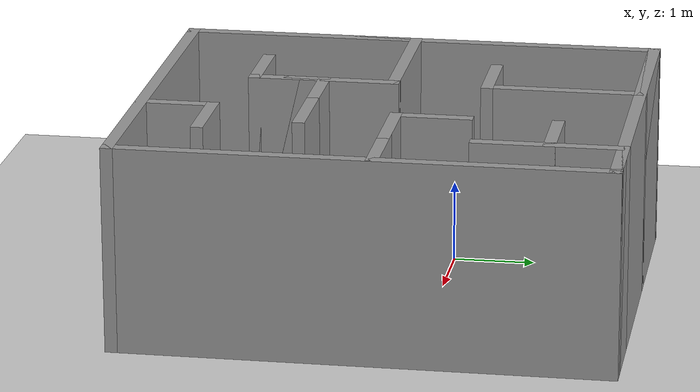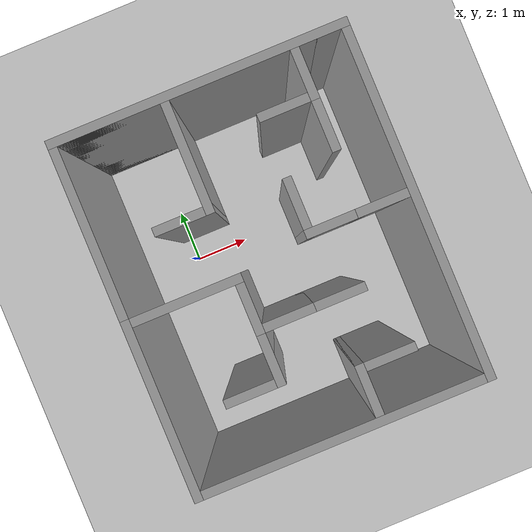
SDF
<sdf version="1.6">
 <world name="default">
  <light name="sun" type="directional">
   <pose>0 0 10 0 -0 0</pose>
   <diffuse>0.8 0.8 0.8 1</diffuse>
   <specular>0.2 0.2 0.2 1</specular>
   <attenuation>
    <range>1000</range>
    <constant>0.9</constant>
    <linear>0.01</linear>
    <quadratic>0.001</quadratic>
   </attenuation>
   <direction>-0.5 0.1 -0.9</direction>
  </light>
  <model name="ground_plane">
   <static>1</static>
   <link name="link">
    <collision name="collision">
     <geometry><plane><normal>0 0 1</normal><size>100 100</size></plane></geometry>
     <surface><friction><ode><mu>100</mu><mu2>50</mu2></ode></friction></surface>
    </collision>
    <visual name="visual">
     <cast_shadows>0</cast_shadows>
     <geometry><plane><normal>0 0 1</normal><size>100 100</size></plane></geometry>
     <material>
      <script><uri>file://media/materials/scripts/gazebo.material</uri><name>Gazebo/Grey</name></script>
     </material>
    </visual>
   </link>
  </model>
  <gravity>0 0 -9.8</gravity>
  <magnetic_field>6e-06 2.3e-05 -4.2e-05</magnetic_field>
  <atmosphere type="adiabatic"/>
  <physics name="default_physics" default="0" type="ode">
   <max_step_size>0.001</max_step_size>
   <real_time_factor>1</real_time_factor>
   <real_time_update_rate>1000</real_time_update_rate>
  </physics>
  <scene><ambient>0.4 0.4 0.4 1</ambient><background>0.7 0.7 0.7 1</background><shadows>1</shadows></scene>
  <spherical_coordinates>
   <surface_model>EARTH_WGS84</surface_model>
   <latitude_deg>0</latitude_deg>
   <longitude_deg>0</longitude_deg>
   <elevation>0</elevation>
   <heading_deg>0</heading_deg>
  </spherical_coordinates>
  <model name="building4_0">
   <pose>1.32774 -0.578973 0 0 -0 0</pose>
   <link name="Wall_0">
    <collision name="Wall_0_Collision">
     <geometry><box><size>5 0.15 2.5</size></box></geometry>
     <pose>0 0 1.25 0 -0 0</pose>
    </collision>
    <visual name="Wall_0_Visual">
     <pose>0 0 1.25 0 -0 0</pose>
     <geometry><box><size>5 0.15 2.5</size></box></geometry>
     <material>
      <script><uri>file://media/materials/scripts/gazebo.material</uri><name>Gazebo/Grey</name></script>
      <ambient>1 1 1 1</ambient>
     </material>
     <meta><layer>0</layer></meta>
    </visual>
    <pose>0 2.925 0 0 -0 0</pose>
   </link>
   <link name="Wall_1">
    <collision name="Wall_1_Collision">
     <geometry><box><size>6 0.15 2.5</size></box></geometry>
     <pose>0 0 1.25 0 -0 0</pose>
    </collision>
    <visual name="Wall_1_Visual">
     <pose>0 0 1.25 0 -0 0</pose>
     <geometry><box><size>6 0.15 2.5</size></box></geometry>
     <material>
      <script><uri>file://media/materials/scripts/gazebo.material</uri><name>Gazebo/Grey</name></script>
      <ambient>1 1 1 1</ambient>
     </material>
     <meta><layer>0</layer></meta>
    </visual>
    <pose>2.425 0 0 0 0 -1.5708</pose>
   </link>
   <link name="Wall_11">
    <collision name="Wall_11_Collision">
     <geometry><box><size>3 0.15 2.5</size></box></geometry>
     <pose>0 0 1.25 0 -0 0</pose>
    </collision>
    <visual name="Wall_11_Visual">
     <pose>0 0 1.25 0 -0 0</pose>
     <geometry><box><size>3 0.15 2.5</size></box></geometry>
     <material>
      <script><uri>file://media/materials/scripts/gazebo.material</uri><name>Gazebo/Grey</name></script>
      <ambient>1 1 1 1</ambient>
     </material>
     <meta><layer>0</layer></meta>
    </visual>
    <pose>-2.425 -1.5 0 0 -0 1.5708</pose>
   </link>
   <link name="Wall_12">
    <collision name="Wall_12_Collision">
     <geometry><box><size>2 0.15 2.5</size></box></geometry>
     <pose>0 0 1.25 0 -0 0</pose>
    </collision>
    <visual name="Wall_12_Visual">
     <pose>0 0 1.25 0 -0 0</pose>
     <geometry><box><size>2 0.15 2.5</size></box></geometry>
     <material>
      <script><uri>file://media/materials/scripts/gazebo.material</uri><name>Gazebo/Grey</name></script>
      <ambient>1 1 1 1</ambient>
     </material>
     <meta><layer>0</layer></meta>
    </visual>
    <pose>-1.5 -0.075 0 0 -0 0</pose>
   </link>
   <link name="Wall_14">
    <collision name="Wall_14_Collision">
     <geometry><box><size>1 0.15 2.5</size></box></geometry>
     <pose>0 0 1.25 0 -0 0</pose>
    </collision>
    <visual name="Wall_14_Visual">
     <pose>0 0 1.25 0 -0 0</pose>
     <geometry><box><size>1 0.15 2.5</size></box></geometry>
     <material>
      <script><uri>file://media/materials/scripts/gazebo.material</uri><name>Gazebo/Grey</name></script>
      <ambient>1 1 1 1</ambient>
     </material>
     <meta><layer>0</layer></meta>
    </visual>
    <pose>-0.575 -0.5 0 0 0 -1.5708</pose>
   </link>
   <link name="Wall_15">
    <collision name="Wall_15_Collision">
     <geometry><box><size>1 0.15 2.5</size></box></geometry>
     <pose>0 0 1.25 0 -0 0</pose>
    </collision>
    <visual name="Wall_15_Visual">
     <pose>0 0 1.25 0 -0 0</pose>
     <geometry><box><size>1 0.15 2.5</size></box></geometry>
     <material>
      <script><uri>file://media/materials/scripts/gazebo.material</uri><name>Gazebo/Grey</name></script>
      <ambient>1 1 1 1</ambient>
     </material>
     <meta><layer>0</layer></meta>
    </visual>
    <pose>-0.575 -1.35 0 0 0 -1.5708</pose>
   </link>
   <link name="Wall_16">
    <collision name="Wall_16_Collision">
     <geometry><box><size>1 0.15 2.5</size></box></geometry>
     <pose>0 0 1.25 0 -0 0</pose>
    </collision>
    <visual name="Wall_16_Visual">
     <pose>0 0 1.25 0 -0 0</pose>
     <geometry><box><size>1 0.15 2.5</size></box></geometry>
     <material>
      <script><uri>file://media/materials/scripts/gazebo.material</uri><name>Gazebo/Grey</name></script>
      <ambient>1 1 1 1</ambient>
     </material>
     <meta><layer>0</layer></meta>
    </visual>
    <pose>-1 -1.775 0 0 -0 3.14159</pose>
   </link>
   <link name="Wall_19">
    <collision name="Wall_19_Collision">
     <geometry><box><size>1 0.15 2.5</size></box></geometry>
     <pose>0 0 1.25 0 -0 0</pose>
    </collision>
    <visual name="Wall_19_Visual">
     <pose>0 0 1.25 0 -0 0</pose>
     <geometry><box><size>1 0.15 2.5</size></box></geometry>
     <material>
      <script><uri>file://media/materials/scripts/gazebo.material</uri><name>Gazebo/Grey</name></script>
      <ambient>1 1 1 1</ambient>
     </material>
     <meta><layer>0</layer></meta>
    </visual>
    <pose>-0.575 -1.35 0 0 -0 1.5708</pose>
   </link>
   <link name="Wall_2">
    <collision name="Wall_2_Collision">
     <geometry><box><size>5 0.15 2.5</size></box></geometry>
     <pose>0 0 1.25 0 -0 0</pose>
    </collision>
    <visual name="Wall_2_Visual">
     <pose>0 0 1.25 0 -0 0</pose>
     <geometry><box><size>5 0.15 2.5</size></box></geometry>
     <material>
      <script><uri>file://media/materials/scripts/gazebo.material</uri><name>Gazebo/Grey</name></script>
      <ambient>1 1 1 1</ambient>
     </material>
     <meta><layer>0</layer></meta>
    </visual>
    <pose>0 -2.925 0 0 -0 3.14159</pose>
   </link>
   <link name="Wall_20">
    <collision name="Wall_20_Collision">
     <geometry><box><size>1 0.15 2.5</size></box></geometry>
     <pose>0 0 1.25 0 -0 0</pose>
    </collision>
    <visual name="Wall_20_Visual">
     <pose>0 0 1.25 0 -0 0</pose>
     <geometry><box><size>1 0.15 2.5</size></box></geometry>
     <material>
      <script><uri>file://media/materials/scripts/gazebo.material</uri><name>Gazebo/Grey</name></script>
      <ambient>1 1 1 1</ambient>
     </material>
     <meta><layer>0</layer></meta>
    </visual>
    <pose>-0.15 -0.925 0 0 -0 0</pose>
   </link>
   <link name="Wall_21">
    <collision name="Wall_21_Collision">
     <geometry><box><size>1 0.15 2.5</size></box></geometry>
     <pose>0 0 1.25 0 -0 0</pose>
    </collision>
    <visual name="Wall_21_Visual">
     <pose>0 0 1.25 0 -0 0</pose>
     <geometry><box><size>1 0.15 2.5</size></box></geometry>
     <material>
      <script><uri>file://media/materials/scripts/gazebo.material</uri><name>Gazebo/Grey</name></script>
      <ambient>1 1 1 1</ambient>
     </material>
     <meta><layer>0</layer></meta>
    </visual>
    <pose>0.7 -0.925 0 0 -0 0</pose>
   </link>
   <link name="Wall_25">
    <collision name="Wall_25_Collision">
     <geometry><box><size>1 0.15 2.5</size></box></geometry>
     <pose>0 0 1.25 0 -0 0</pose>
    </collision>
    <visual name="Wall_25_Visual">
     <pose>0 0 1.25 0 -0 0</pose>
     <geometry><box><size>1 0.15 2.5</size></box></geometry>
     <material>
      <script><uri>file://media/materials/scripts/gazebo.material</uri><name>Gazebo/Grey</name></script>
      <ambient>1 1 1 1</ambient>
     </material>
     <meta><layer>0</layer></meta>
    </visual>
    <pose>2 2.925 0 0 -0 3.14159</pose>
   </link>
   <link name="Wall_26">
    <collision name="Wall_26_Collision">
     <geometry><box><size>1 0.15 2.5</size></box></geometry>
     <pose>0 0 1.25 0 -0 0</pose>
    </collision>
    <visual name="Wall_26_Visual">
     <pose>0 0 1.25 0 -0 0</pose>
     <geometry><box><size>1 0.15 2.5</size></box></geometry>
     <material>
      <script><uri>file://media/materials/scripts/gazebo.material</uri><name>Gazebo/Grey</name></script>
      <ambient>1 1 1 1</ambient>
     </material>
     <meta><layer>0</layer></meta>
    </visual>
    <pose>1.575 2.5 0 0 0 -1.5708</pose>
   </link>
   <link name="Wall_3">
    <collision name="Wall_3_Collision">
     <geometry><box><size>6 0.15 2.5</size></box></geometry>
     <pose>0 0 1.25 0 -0 0</pose>
    </collision>
    <visual name="Wall_3_Visual">
     <pose>0 0 1.25 0 -0 0</pose>
     <geometry><box><size>6 0.15 2.5</size></box></geometry>
     <material>
      <script><uri>file://media/materials/scripts/gazebo.material</uri><name>Gazebo/Grey</name></script>
      <ambient>1 1 1 1</ambient>
     </material>
     <meta><layer>0</layer></meta>
    </visual>
    <pose>-2.425 0 0 0 -0 1.5708</pose>
   </link>
   <link name="Wall_30">
    <collision name="Wall_30_Collision">
     <geometry><box><size>1 0.15 2.5</size></box></geometry>
     <pose>0 0 1.25 0 -0 0</pose>
    </collision>
    <visual name="Wall_30_Visual">
     <pose>0 0 1.25 0 -0 0</pose>
     <geometry><box><size>1 0.15 2.5</size></box></geometry>
     <material>
      <script><uri>file://media/materials/scripts/gazebo.material</uri><name>Gazebo/Grey</name></script>
      <ambient>1 1 1 1</ambient>
     </material>
     <meta><layer>0</layer></meta>
    </visual>
    <pose>0.631976 -2.49026 0 0 -0 1.5708</pose>
   </link>
   <link name="Wall_32">
    <collision name="Wall_32_Collision">
     <geometry><box><size>1 0.15 2.5</size></box></geometry>
     <pose>0 0 1.25 0 -0 0</pose>
    </collision>
    <visual name="Wall_32_Visual">
     <pose>0 0 1.25 0 -0 0</pose>
     <geometry><box><size>1 0.15 2.5</size></box></geometry>
     <material>
      <script><uri>file://media/materials/scripts/gazebo.material</uri><name>Gazebo/Grey</name></script>
      <ambient>1 1 1 1</ambient>
     </material>
     <meta><layer>0</layer></meta>
    </visual>
    <pose>1.15 2.075 0 0 -0 3.14159</pose>
   </link>
   <link name="Wall_34">
    <collision name="Wall_34_Collision">
     <geometry><box><size>1 0.15 2.5</size></box></geometry>
     <pose>0 0 1.25 0 -0 0</pose>
    </collision>
    <visual name="Wall_34_Visual">
     <pose>0 0 1.25 0 -0 0</pose>
     <geometry><box><size>1 0.15 2.5</size></box></geometry>
     <material>
      <script><uri>file://media/materials/scripts/gazebo.material</uri><name>Gazebo/Grey</name></script>
      <ambient>1 1 1 1</ambient>
     </material>
     <meta><layer>0</layer></meta>
    </visual>
    <pose>1.05698 -2.06526 0 0 -0 0</pose>
   </link>
   <link name="Wall_36">
    <collision name="Wall_36_Collision">
     <geometry><box><size>1 0.15 2.5</size></box></geometry>
     <pose>0 0 1.25 0 -0 0</pose>
    </collision>
    <visual name="Wall_36_Visual">
     <pose>0 0 1.25 0 -0 0</pose>
     <geometry><box><size>1 0.15 2.5</size></box></geometry>
     <material>
      <script><uri>file://media/materials/scripts/gazebo.material</uri><name>Gazebo/Grey</name></script>
      <ambient>1 1 1 1</ambient>
     </material>
     <meta><layer>0</layer></meta>
    </visual>
    <pose>1.98323 0.149353 0 0 -0 3.14159</pose>
   </link>
   <link name="Wall_37">
    <collision name="Wall_37_Collision">
     <geometry><box><size>1 0.15 2.5</size></box></geometry>
     <pose>0 0 1.25 0 -0 0</pose>
    </collision>
    <visual name="Wall_37_Visual">
     <pose>0 0 1.25 0 -0 0</pose>
     <geometry><box><size>1 0.15 2.5</size></box></geometry>
     <material>
      <script><uri>file://media/materials/scripts/gazebo.material</uri><name>Gazebo/Grey</name></script>
      <ambient>1 1 1 1</ambient>
     </material>
     <meta><layer>0</layer></meta>
    </visual>
    <pose>1.13323 0.149353 0 0 -0 3.14159</pose>
   </link>
   <link name="Wall_39">
    <collision name="Wall_39_Collision">
     <geometry><box><size>1 0.15 2.5</size></box></geometry>
     <pose>0 0 1.25 0 -0 0</pose>
    </collision>
    <visual name="Wall_39_Visual">
     <pose>0 0 1.25 0 -0 0</pose>
     <geometry><box><size>1 0.15 2.5</size></box></geometry>
     <material>
      <script><uri>file://media/materials/scripts/gazebo.material</uri><name>Gazebo/Grey</name></script>
      <ambient>1 1 1 1</ambient>
     </material>
     <meta><layer>0</layer></meta>
    </visual>
    <pose>1.575 1.65 0 0 0 -1.5708</pose>
   </link>
   <link name="Wall_41">
    <collision name="Wall_41_Collision">
     <geometry><box><size>1 0.15 2.5</size></box></geometry>
     <pose>0 0 1.25 0 -0 0</pose>
    </collision>
    <visual name="Wall_41_Visual">
     <pose>0 0 1.25 0 -0 0</pose>
     <geometry><box><size>1 0.15 2.5</size></box></geometry>
     <material>
      <script><uri>file://media/materials/scripts/gazebo.material</uri><name>Gazebo/Grey</name></script>
      <ambient>1 1 1 1</ambient>
     </material>
     <meta><layer>0</layer></meta>
    </visual>
    <pose>0.708233 0.574353 0 0 -0 1.5708</pose>
   </link>
   <link name="Wall_5">
    <collision name="Wall_5_Collision">
     <geometry><box><size>2 0.15 2.5</size></box></geometry>
     <pose>0 0 1.25 0 -0 0</pose>
    </collision>
    <visual name="Wall_5_Visual">
     <pose>0 0 1.25 0 -0 0</pose>
     <geometry><box><size>2 0.15 2.5</size></box></geometry>
     <material>
      <script><uri>file://media/materials/scripts/gazebo.material</uri><name>Gazebo/Grey</name></script>
      <ambient>1 1 1 1</ambient>
     </material>
     <meta><layer>0</layer></meta>
    </visual>
    <pose>-1.5 2.925 0 0 -0 0</pose>
   </link>
   <link name="Wall_6">
    <collision name="Wall_6_Collision">
     <geometry><box><size>2 0.15 2.5</size></box></geometry>
     <pose>0 0 1.25 0 -0 0</pose>
    </collision>
    <visual name="Wall_6_Visual">
     <pose>0 0 1.25 0 -0 0</pose>
     <geometry><box><size>2 0.15 2.5</size></box></geometry>
     <material>
      <script><uri>file://media/materials/scripts/gazebo.material</uri><name>Gazebo/Grey</name></script>
      <ambient>1 1 1 1</ambient>
     </material>
     <meta><layer>0</layer></meta>
    </visual>
    <pose>-0.575 2 0 0 0 -1.5708</pose>
   </link>
   <link name="Wall_8">
    <collision name="Wall_8_Collision">
     <geometry><box><size>1 0.15 2.5</size></box></geometry>
     <pose>0 0 1.25 0 -0 0</pose>
    </collision>
    <visual name="Wall_8_Visual">
     <pose>0 0 1.25 0 -0 0</pose>
     <geometry><box><size>1 0.15 2.5</size></box></geometry>
     <material>
      <script><uri>file://media/materials/scripts/gazebo.material</uri><name>Gazebo/Grey</name></script>
      <ambient>1 1 1 1</ambient>
     </material>
     <meta><layer>0</layer></meta>
    </visual>
    <pose>-1 1.075 0 0 -0 3.14159</pose>
   </link>
   <static>1</static>
  </model>
 </world>
</sdf>
